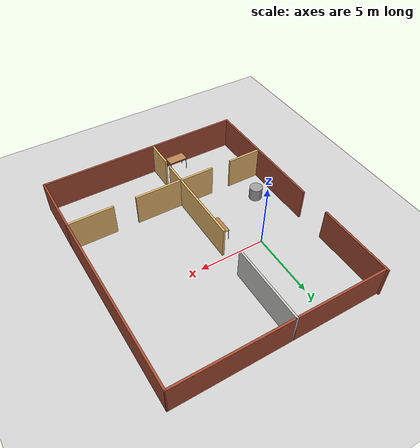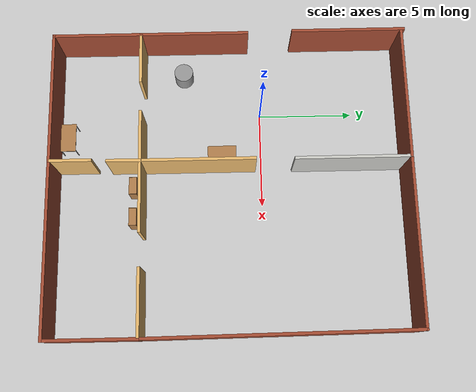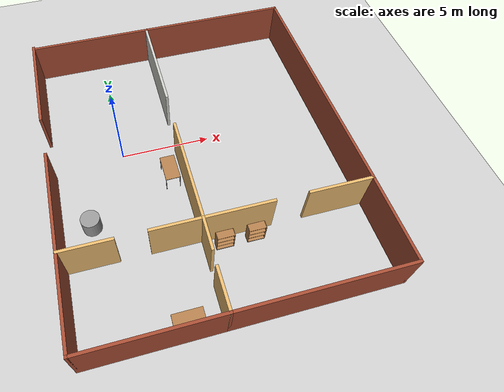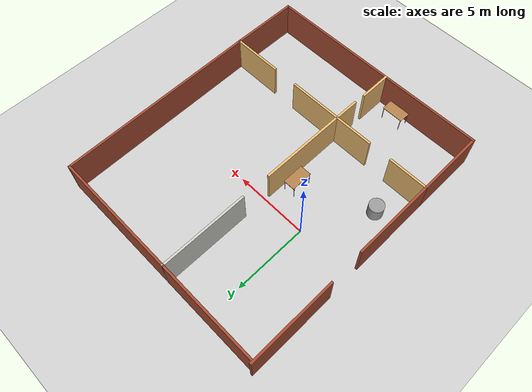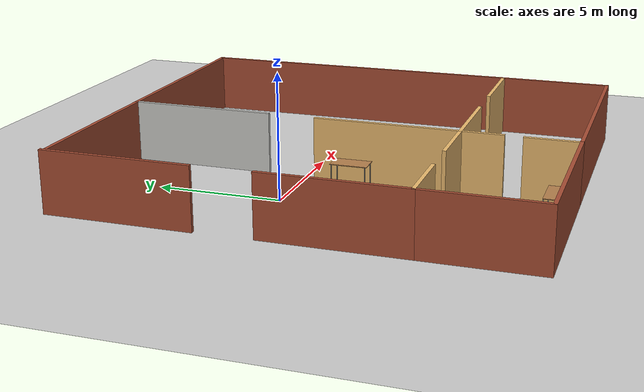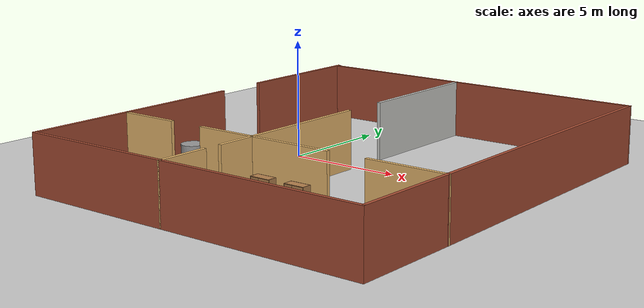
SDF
<sdf version="1.7">
 <world name="default">
  <light name="sun" type="directional">
   <pose>0 0 10 0 -0 0</pose>
   <diffuse>0.8 0.8 0.8 1</diffuse>
   <specular>0.2 0.2 0.2 1</specular>
   <attenuation>
    <range>1000</range>
    <constant>0.9</constant>
    <linear>0.01</linear>
    <quadratic>0.001</quadratic>
   </attenuation>
   <direction>-0.5 0.1 -0.9</direction>
   <spot><inner_angle>0</inner_angle><outer_angle>0</outer_angle><falloff>0</falloff></spot>
  </light>
  <model name="ground_plane">
   <static>1</static>
   <link name="link">
    <collision name="collision">
     <geometry><plane><normal>0 0 1</normal><size>100 100</size></plane></geometry>
     <surface><friction><ode><mu>100</mu><mu2>50</mu2></ode></friction></surface>
    </collision>
    <visual name="visual">
     <cast_shadows>0</cast_shadows>
     <geometry><plane><normal>0 0 1</normal><size>100 100</size></plane></geometry>
     <material>
      <script><uri>file://media/materials/scripts/gazebo.material</uri><name>Gazebo/Grey</name></script>
     </material>
    </visual>
   </link>
  </model>
  <gravity>0 0 -9.8</gravity>
  <magnetic_field>6e-06 2.3e-05 -4.2e-05</magnetic_field>
  <atmosphere type="adiabatic"/>
  <physics type="ode">
   <max_step_size>0.001</max_step_size>
   <real_time_factor>1</real_time_factor>
   <real_time_update_rate>1000</real_time_update_rate>
  </physics>
  <scene><ambient>0.4 0.4 0.4 1</ambient><background>0.7 0.7 0.7 1</background><shadows>1</shadows></scene>
  <spherical_coordinates>
   <surface_model>EARTH_WGS84</surface_model>
   <latitude_deg>0</latitude_deg>
   <longitude_deg>0</longitude_deg>
   <elevation>0</elevation>
   <heading_deg>0</heading_deg>
  </spherical_coordinates>
  <model name="building_template_model">
   <pose>3.94274 -1.58814 0 0 -0 0</pose>
   <link name="Wall_11">
    <collision name="Wall_11_Collision">
     <geometry><box><size>5.75 0.15 2.5</size></box></geometry>
     <pose>0 0 1.25 0 -0 0</pose>
    </collision>
    <visual name="Wall_11_Visual">
     <pose>0 0 1.25 0 -0 0</pose>
     <geometry><box><size>5.75 0.15 2.5</size></box></geometry>
     <material>
      <script><uri>file://media/materials/scripts/gazebo.material</uri><name>Gazebo/Bricks</name></script>
      <ambient>1 1 1 1</ambient>
     </material>
     <meta><layer>0</layer></meta>
    </visual>
    <pose>-7.81967 -1.85556 0 0 -0 -1.5708</pose>
   </link>
   <link name="Wall_12">
    <collision name="Wall_12_Collision">
     <geometry><box><size>2.75 0.15 2.5</size></box></geometry>
     <pose>0 0 1.25 0 -0 0</pose>
    </collision>
    <visual name="Wall_12_Visual">
     <pose>0 0 1.25 0 -0 0</pose>
     <geometry><box><size>2.75 0.15 2.5</size></box></geometry>
     <material>
      <script><uri>file://media/materials/scripts/gazebo.material</uri><name>Gazebo/Grey</name></script>
      <ambient>0.913725 0.72549 0.431373 1</ambient>
     </material>
     <meta><layer>0</layer></meta>
    </visual>
    <pose>-6.51967 -4.65556 0 0 -0 0</pose>
   </link>
   <link name="Wall_14">
    <collision name="Wall_14_Collision">
     <geometry><box><size>2.75 0.15 2.5</size></box></geometry>
     <pose>0 0 1.25 0 -0 0</pose>
    </collision>
    <visual name="Wall_14_Visual">
     <pose>0 0 1.25 0 -0 0</pose>
     <geometry><box><size>2.75 0.15 2.5</size></box></geometry>
     <material>
      <script><uri>file://media/materials/scripts/gazebo.material</uri><name>Gazebo/Grey</name></script>
      <ambient>0.913725 0.72549 0.431373 1</ambient>
     </material>
     <meta><layer>0</layer></meta>
    </visual>
    <pose>-2.21272 -4.65459 0 0 -0 0</pose>
   </link>
   <link name="Wall_15">
    <collision name="Wall_15_Collision">
     <geometry><box><size>6 0.15 2.5</size></box></geometry>
     <pose>0 0 1.25 0 -0 0</pose>
    </collision>
    <visual name="Wall_15_Visual">
     <pose>0 0 1.25 0 -0 0</pose>
     <geometry><box><size>6 0.15 2.5</size></box></geometry>
     <material>
      <script><uri>file://media/materials/scripts/gazebo.material</uri><name>Gazebo/Grey</name></script>
      <ambient>0.913725 0.72549 0.431373 1</ambient>
     </material>
     <meta><layer>0</layer></meta>
    </visual>
    <pose>-0.912718 -1.72959 0 0 -0 1.5708</pose>
   </link>
   <link name="Wall_17">
    <collision name="Wall_17_Collision">
     <geometry><box><size>4.75 0.15 2.5</size></box></geometry>
     <pose>0 0 1.25 0 -0 0</pose>
    </collision>
    <visual name="Wall_17_Visual">
     <pose>0 0 1.25 0 -0 0</pose>
     <geometry><box><size>4.75 0.15 2.5</size></box></geometry>
     <material>
      <script><uri>file://media/materials/scripts/gazebo.material</uri><name>Gazebo/Bricks</name></script>
      <ambient>1 1 1 1</ambient>
     </material>
     <meta><layer>0</layer></meta>
    </visual>
    <pose>-7.81967 -6.95556 0 0 -0 -1.5708</pose>
   </link>
   <link name="Wall_22">
    <collision name="Wall_22_Collision">
     <geometry><box><size>7 0.15 2.5</size></box></geometry>
     <pose>0 0 1.25 0 -0 0</pose>
    </collision>
    <visual name="Wall_22_Visual">
     <pose>0 0 1.25 0 -0 0</pose>
     <geometry><box><size>7 0.15 2.5</size></box></geometry>
     <material>
      <script><uri>file://media/materials/scripts/gazebo.material</uri><name>Gazebo/Bricks</name></script>
      <ambient>1 1 1 1</ambient>
     </material>
     <meta><layer>0</layer></meta>
    </visual>
    <pose>-4.39467 -9.25556 0 0 -0 0</pose>
   </link>
   <link name="Wall_23">
    <collision name="Wall_23_Collision">
     <geometry><box><size>2.25 0.15 2.5</size></box></geometry>
     <pose>0 0 1.25 0 -0 0</pose>
    </collision>
    <visual name="Wall_23_Visual">
     <pose>0 0 1.25 0 -0 0</pose>
     <geometry><box><size>2.25 0.15 2.5</size></box></geometry>
     <material>
      <script><uri>file://media/materials/scripts/gazebo.material</uri><name>Gazebo/Grey</name></script>
      <ambient>0.913725 0.72549 0.431373 1</ambient>
     </material>
     <meta><layer>0</layer></meta>
    </visual>
    <pose>-0.969669 -8.20556 0 0 -0 1.5708</pose>
   </link>
   <link name="Wall_25">
    <collision name="Wall_25_Collision">
     <geometry><box><size>1.79194 0.15 2.5</size></box></geometry>
     <pose>0 0 1.25 0 -0 0</pose>
    </collision>
    <visual name="Wall_25_Visual">
     <pose>0 0 1.25 0 -0 0</pose>
     <geometry><box><size>1.79194 0.15 2.5</size></box></geometry>
     <material>
      <script><uri>file://media/materials/scripts/gazebo.material</uri><name>Gazebo/Grey</name></script>
      <ambient>0.913725 0.72549 0.431373 1</ambient>
     </material>
     <meta><layer>0</layer></meta>
    </visual>
    <pose>-0.919497 -5.47553 0 0 -0 1.56254</pose>
   </link>
   <link name="Wall_27">
    <collision name="Wall_27_Collision">
     <geometry><box><size>6 0.15 2.5</size></box></geometry>
     <pose>0 0 1.25 0 -0 0</pose>
    </collision>
    <visual name="Wall_27_Visual">
     <pose>0 0 1.25 0 -0 0</pose>
     <geometry><box><size>6 0.15 2.5</size></box></geometry>
     <material>
      <script><uri>file://media/materials/scripts/gazebo.material</uri><name>Gazebo/CeilingTiled</name></script>
      <ambient>0.913725 0.72549 0.431373 1</ambient>
     </material>
     <meta><layer>0</layer></meta>
    </visual>
    <pose>-0.880014 6.2046 0 0 -0 1.5708</pose>
   </link>
   <link name="Wall_28">
    <collision name="Wall_28_Collision">
     <geometry><box><size>7 0.15 2.5</size></box></geometry>
     <pose>0 0 1.25 0 -0 0</pose>
    </collision>
    <visual name="Wall_28_Visual">
     <pose>0 0 1.25 0 -0 0</pose>
     <geometry><box><size>7 0.15 2.5</size></box></geometry>
     <material>
      <script><uri>file://media/materials/scripts/gazebo.material</uri><name>Gazebo/Bricks</name></script>
      <ambient>1 1 1 1</ambient>
     </material>
     <meta><layer>0</layer></meta>
    </visual>
    <pose>-4.30501 9.1296 0 0 -0 3.14159</pose>
   </link>
   <link name="Wall_30">
    <collision name="Wall_30_Collision">
     <geometry><box><size>8.75 0.15 2.5</size></box></geometry>
     <pose>0 0 1.25 0 -0 0</pose>
    </collision>
    <visual name="Wall_30_Visual">
     <pose>0 0 1.25 0 -0 0</pose>
     <geometry><box><size>8.75 0.15 2.5</size></box></geometry>
     <material>
      <script><uri>file://media/materials/scripts/gazebo.material</uri><name>Gazebo/Bricks</name></script>
      <ambient>1 1 1 1</ambient>
     </material>
     <meta><layer>0</layer></meta>
    </visual>
    <pose>3.41999 9.1296 0 0 -0 0</pose>
   </link>
   <link name="Wall_36">
    <collision name="Wall_36_Collision">
     <geometry><box><size>9 0.15 2.5</size></box></geometry>
     <pose>0 0 1.25 0 -0 0</pose>
    </collision>
    <visual name="Wall_36_Visual">
     <pose>0 0 1.25 0 -0 0</pose>
     <geometry><box><size>9 0.15 2.5</size></box></geometry>
     <material>
      <script><uri>file://media/materials/scripts/gazebo.material</uri><name>Gazebo/Bricks</name></script>
      <ambient>1 1 1 1</ambient>
     </material>
     <meta><layer>0</layer></meta>
    </visual>
    <pose>3.45533 -9.25556 0 0 -0 0</pose>
   </link>
   <link name="Wall_37">
    <collision name="Wall_37_Collision">
     <geometry><box><size>4.75 0.15 2.5</size></box></geometry>
     <pose>0 0 1.25 0 -0 0</pose>
    </collision>
    <visual name="Wall_37_Visual">
     <pose>0 0 1.25 0 -0 0</pose>
     <geometry><box><size>4.75 0.15 2.5</size></box></geometry>
     <material>
      <script><uri>file://media/materials/scripts/gazebo.material</uri><name>Gazebo/Bricks</name></script>
      <ambient>1 1 1 1</ambient>
     </material>
     <meta><layer>0</layer></meta>
    </visual>
    <pose>7.88033 -6.95556 0 0 -0 1.5708</pose>
   </link>
   <link name="Wall_39">
    <collision name="Wall_39_Collision">
     <geometry><box><size>3.5 0.15 2.5</size></box></geometry>
     <pose>0 0 1.25 0 -0 0</pose>
    </collision>
    <visual name="Wall_39_Visual">
     <pose>0 0 1.25 0 -0 0</pose>
     <geometry><box><size>3.5 0.15 2.5</size></box></geometry>
     <material>
      <script><uri>file://media/materials/scripts/gazebo.material</uri><name>Gazebo/Grey</name></script>
      <ambient>0.913725 0.72549 0.431373 1</ambient>
     </material>
     <meta><layer>0</layer></meta>
    </visual>
    <pose>6.20533 -4.65556 0 0 -0 3.14159</pose>
   </link>
   <link name="Wall_41">
    <collision name="Wall_41_Collision">
     <geometry><box><size>3.75 0.15 2.5</size></box></geometry>
     <pose>0 0 1.25 0 -0 0</pose>
    </collision>
    <visual name="Wall_41_Visual">
     <pose>0 0 1.25 0 -0 0</pose>
     <geometry><box><size>3.75 0.15 2.5</size></box></geometry>
     <material>
      <script><uri>file://media/materials/scripts/gazebo.material</uri><name>Gazebo/Grey</name></script>
      <ambient>0.913725 0.72549 0.431373 1</ambient>
     </material>
     <meta><layer>0</layer></meta>
    </visual>
    <pose>0.887282 -4.65459 0 0 -0 0</pose>
   </link>
   <link name="Wall_43">
    <collision name="Wall_43_Collision">
     <geometry><box><size>13.9361 0.15 2.5</size></box></geometry>
     <pose>0 0 1.25 0 -0 0</pose>
    </collision>
    <visual name="Wall_43_Visual">
     <pose>0 0 1.25 0 -0 0</pose>
     <geometry><box><size>13.9361 0.15 2.5</size></box></geometry>
     <material>
      <script><uri>file://media/materials/scripts/gazebo.material</uri><name>Gazebo/Bricks</name></script>
      <ambient>1 1 1 1</ambient>
     </material>
     <meta><layer>0</layer></meta>
    </visual>
    <pose>7.80016 2.23702 0 0 -0 1.58243</pose>
   </link>
   <link name="Wall_6">
    <collision name="Wall_6_Collision">
     <geometry><box><size>6 0.15 2.5</size></box></geometry>
     <pose>0 0 1.25 0 -0 0</pose>
    </collision>
    <visual name="Wall_6_Visual">
     <pose>0 0 1.25 0 -0 0</pose>
     <geometry><box><size>6 0.15 2.5</size></box></geometry>
     <material>
      <script><uri>file://media/materials/scripts/gazebo.material</uri><name>Gazebo/Bricks</name></script>
      <ambient>1 1 1 1</ambient>
     </material>
     <meta><layer>0</layer></meta>
    </visual>
    <pose>-7.8812 6.33056 0 0 -0 1.5708</pose>
   </link>
   <static>1</static>
  </model>
  <model name="Table">
   <static>1</static>
   <link name="link">
    <collision name="surface">
     <pose>0 0 1 0 -0 0</pose>
     <geometry><box><size>1.5 0.8 0.03</size></box></geometry>
     <surface><friction><ode><mu>0.6</mu><mu2>0.6</mu2></ode></friction></surface>
    </collision>
    <visual name="visual1">
     <pose>0 0 1 0 -0 0</pose>
     <geometry><box><size>1.5 0.8 0.03</size></box></geometry>
     <material>
      <diffuse>1 1 1 1</diffuse>
      <script><uri>file://media/materials/scripts/gazebo.material</uri><name>Gazebo/Wood</name></script>
      <pbr><metal><albedo_map>model://Table/Table_Diffuse.jpg</albedo_map></metal></pbr>
     </material>
    </visual>
    <collision name="front_left_leg">
     <pose>0.68 0.38 0.5 0 -0 0</pose>
     <geometry><cylinder><radius>0.02</radius><length>1</length></cylinder></geometry>
    </collision>
    <visual name="front_left_leg">
     <pose>0.68 0.38 0.5 0 -0 0</pose>
     <geometry><cylinder><radius>0.02</radius><length>1</length></cylinder></geometry>
     <material>
      <diffuse>0.5 0.5 0.5 1</diffuse>
      <script><uri>file://media/materials/scripts/gazebo.material</uri><name>Gazebo/Grey</name></script>
     </material>
    </visual>
    <collision name="front_right_leg">
     <pose>0.68 -0.38 0.5 0 -0 0</pose>
     <geometry><cylinder><radius>0.02</radius><length>1</length></cylinder></geometry>
    </collision>
    <visual name="front_right_leg">
     <pose>0.68 -0.38 0.5 0 -0 0</pose>
     <geometry><cylinder><radius>0.02</radius><length>1</length></cylinder></geometry>
     <material>
      <diffuse>0.5 0.5 0.5 1</diffuse>
      <script><uri>file://media/materials/scripts/gazebo.material</uri><name>Gazebo/Grey</name></script>
     </material>
    </visual>
    <collision name="back_right_leg">
     <pose>-0.68 -0.38 0.5 0 -0 0</pose>
     <geometry><cylinder><radius>0.02</radius><length>1</length></cylinder></geometry>
    </collision>
    <visual name="back_right_leg">
     <pose>-0.68 -0.38 0.5 0 -0 0</pose>
     <geometry><cylinder><radius>0.02</radius><length>1</length></cylinder></geometry>
     <material>
      <diffuse>0.5 0.5 0.5 1</diffuse>
      <script><uri>file://media/materials/scripts/gazebo.material</uri><name>Gazebo/Grey</name></script>
     </material>
    </visual>
    <collision name="back_left_leg">
     <pose>-0.68 0.38 0.5 0 -0 0</pose>
     <geometry><cylinder><radius>0.02</radius><length>1</length></cylinder></geometry>
    </collision>
    <visual name="back_left_leg">
     <pose>-0.68 0.38 0.5 0 -0 0</pose>
     <geometry><cylinder><radius>0.02</radius><length>1</length></cylinder></geometry>
     <material>
      <diffuse>0.5 0.5 0.5 1</diffuse>
      <script><uri>file://media/materials/scripts/gazebo.material</uri><name>Gazebo/Grey</name></script>
     </material>
    </visual>
   </link>
   <pose>1.29696 -10.224 0 0 -0 0</pose>
  </model>
  <model name="Table_0">
   <static>1</static>
   <link name="link">
    <collision name="surface">
     <pose>0 0 1 0 -0 0</pose>
     <geometry><box><size>1.5 0.8 0.03</size></box></geometry>
     <surface><friction><ode><mu>0.6</mu><mu2>0.6</mu2></ode></friction></surface>
    </collision>
    <visual name="visual1">
     <pose>0 0 1 0 -0 0</pose>
     <geometry><box><size>1.5 0.8 0.03</size></box></geometry>
     <material>
      <diffuse>1 1 1 1</diffuse>
      <script><uri>file://media/materials/scripts/gazebo.material</uri><name>Gazebo/Wood</name></script>
      <pbr><metal><albedo_map>model://Table/Table_Diffuse.jpg</albedo_map></metal></pbr>
     </material>
    </visual>
    <collision name="front_left_leg">
     <pose>0.68 0.38 0.5 0 -0 0</pose>
     <geometry><cylinder><radius>0.02</radius><length>1</length></cylinder></geometry>
    </collision>
    <visual name="front_left_leg">
     <pose>0.68 0.38 0.5 0 -0 0</pose>
     <geometry><cylinder><radius>0.02</radius><length>1</length></cylinder></geometry>
     <material>
      <diffuse>0.5 0.5 0.5 1</diffuse>
      <script><uri>file://media/materials/scripts/gazebo.material</uri><name>Gazebo/Grey</name></script>
     </material>
    </visual>
    <collision name="front_right_leg">
     <pose>0.68 -0.38 0.5 0 -0 0</pose>
     <geometry><cylinder><radius>0.02</radius><length>1</length></cylinder></geometry>
    </collision>
    <visual name="front_right_leg">
     <pose>0.68 -0.38 0.5 0 -0 0</pose>
     <geometry><cylinder><radius>0.02</radius><length>1</length></cylinder></geometry>
     <material>
      <diffuse>0.5 0.5 0.5 1</diffuse>
      <script><uri>file://media/materials/scripts/gazebo.material</uri><name>Gazebo/Grey</name></script>
     </material>
    </visual>
    <collision name="back_right_leg">
     <pose>-0.68 -0.38 0.5 0 -0 0</pose>
     <geometry><cylinder><radius>0.02</radius><length>1</length></cylinder></geometry>
    </collision>
    <visual name="back_right_leg">
     <pose>-0.68 -0.38 0.5 0 -0 0</pose>
     <geometry><cylinder><radius>0.02</radius><length>1</length></cylinder></geometry>
     <material>
      <diffuse>0.5 0.5 0.5 1</diffuse>
      <script><uri>file://media/materials/scripts/gazebo.material</uri><name>Gazebo/Grey</name></script>
     </material>
    </visual>
    <collision name="back_left_leg">
     <pose>-0.68 0.38 0.5 0 -0 0</pose>
     <geometry><cylinder><radius>0.02</radius><length>1</length></cylinder></geometry>
    </collision>
    <visual name="back_left_leg">
     <pose>-0.68 0.38 0.5 0 -0 0</pose>
     <geometry><cylinder><radius>0.02</radius><length>1</length></cylinder></geometry>
     <material>
      <diffuse>0.5 0.5 0.5 1</diffuse>
      <script><uri>file://media/materials/scripts/gazebo.material</uri><name>Gazebo/Grey</name></script>
     </material>
    </visual>
   </link>
   <pose>2.31437 -2.08075 0 0 -0 1.58683</pose>
  </model>
  <model name="bookshelf">
   <static>1</static>
   <link name="link">
    <inertial><mass>1</mass></inertial>
    <collision name="back">
     <pose>0 0.005 0.6 0 -0 0</pose>
     <geometry><box><size>0.9 0.01 1.2</size></box></geometry>
    </collision>
    <visual name="visual1">
     <pose>0 0.005 0.6 0 -0 0</pose>
     <geometry><box><size>0.9 0.01 1.2</size></box></geometry>
     <material>
      <script><uri>file://media/materials/scripts/gazebo.material</uri><name>Gazebo/Wood</name></script>
     </material>
    </visual>
    <collision name="left_side">
     <pose>0.45 -0.195 0.6 0 -0 0</pose>
     <geometry><box><size>0.02 0.4 1.2</size></box></geometry>
    </collision>
    <visual name="visual2">
     <pose>0.45 -0.195 0.6 0 -0 0</pose>
     <geometry><box><size>0.02 0.4 1.2</size></box></geometry>
     <material>
      <script><uri>file://media/materials/scripts/gazebo.material</uri><name>Gazebo/Wood</name></script>
     </material>
    </visual>
    <collision name="right_side">
     <pose>-0.45 -0.195 0.6 0 -0 0</pose>
     <geometry><box><size>0.02 0.4 1.2</size></box></geometry>
    </collision>
    <visual name="visual3">
     <pose>-0.45 -0.195 0.6 0 -0 0</pose>
     <geometry><box><size>0.02 0.4 1.2</size></box></geometry>
     <material>
      <script><uri>file://media/materials/scripts/gazebo.material</uri><name>Gazebo/Wood</name></script>
     </material>
    </visual>
    <collision name="bottom">
     <pose>0 -0.195 0.03 0 -0 0</pose>
     <geometry><box><size>0.88 0.4 0.06</size></box></geometry>
    </collision>
    <visual name="visual4">
     <pose>0 -0.195 0.03 0 -0 0</pose>
     <geometry><box><size>0.88 0.4 0.06</size></box></geometry>
     <material>
      <script><uri>file://media/materials/scripts/gazebo.material</uri><name>Gazebo/Wood</name></script>
     </material>
    </visual>
    <collision name="top">
     <pose>0 -0.195 1.19 0 -0 0</pose>
     <geometry><box><size>0.88 0.4 0.02</size></box></geometry>
    </collision>
    <visual name="visual5">
     <pose>0 -0.195 1.19 0 -0 0</pose>
     <geometry><box><size>0.88 0.4 0.02</size></box></geometry>
     <material>
      <script><uri>file://media/materials/scripts/gazebo.material</uri><name>Gazebo/Wood</name></script>
     </material>
    </visual>
    <collision name="low_shelf">
     <pose>0 -0.195 0.43 0 -0 0</pose>
     <geometry><box><size>0.88 0.4 0.02</size></box></geometry>
    </collision>
    <visual name="visual6">
     <pose>0 -0.195 0.43 0 -0 0</pose>
     <geometry><box><size>0.88 0.4 0.02</size></box></geometry>
     <material>
      <script><uri>file://media/materials/scripts/gazebo.material</uri><name>Gazebo/Wood</name></script>
     </material>
    </visual>
    <collision name="high_shelf">
     <pose>0 -0.195 0.8 0 -0 0</pose>
     <geometry><box><size>0.88 0.4 0.02</size></box></geometry>
    </collision>
    <visual name="visual7">
     <pose>0 -0.195 0.8 0 -0 0</pose>
     <geometry><box><size>0.88 0.4 0.02</size></box></geometry>
     <material>
      <script><uri>file://media/materials/scripts/gazebo.material</uri><name>Gazebo/Wood</name></script>
     </material>
    </visual>
   </link>
   <pose>4.02857 -6.55195 0 0 -0 0</pose>
  </model>
  <model name="bookshelf_0">
   <static>1</static>
   <link name="link">
    <inertial><mass>1</mass></inertial>
    <collision name="back">
     <pose>0 0.005 0.6 0 -0 0</pose>
     <geometry><box><size>0.9 0.01 1.2</size></box></geometry>
    </collision>
    <visual name="visual1">
     <pose>0 0.005 0.6 0 -0 0</pose>
     <geometry><box><size>0.9 0.01 1.2</size></box></geometry>
     <material>
      <script><uri>file://media/materials/scripts/gazebo.material</uri><name>Gazebo/Wood</name></script>
     </material>
    </visual>
    <collision name="left_side">
     <pose>0.45 -0.195 0.6 0 -0 0</pose>
     <geometry><box><size>0.02 0.4 1.2</size></box></geometry>
    </collision>
    <visual name="visual2">
     <pose>0.45 -0.195 0.6 0 -0 0</pose>
     <geometry><box><size>0.02 0.4 1.2</size></box></geometry>
     <material>
      <script><uri>file://media/materials/scripts/gazebo.material</uri><name>Gazebo/Wood</name></script>
     </material>
    </visual>
    <collision name="right_side">
     <pose>-0.45 -0.195 0.6 0 -0 0</pose>
     <geometry><box><size>0.02 0.4 1.2</size></box></geometry>
    </collision>
    <visual name="visual3">
     <pose>-0.45 -0.195 0.6 0 -0 0</pose>
     <geometry><box><size>0.02 0.4 1.2</size></box></geometry>
     <material>
      <script><uri>file://media/materials/scripts/gazebo.material</uri><name>Gazebo/Wood</name></script>
     </material>
    </visual>
    <collision name="bottom">
     <pose>0 -0.195 0.03 0 -0 0</pose>
     <geometry><box><size>0.88 0.4 0.06</size></box></geometry>
    </collision>
    <visual name="visual4">
     <pose>0 -0.195 0.03 0 -0 0</pose>
     <geometry><box><size>0.88 0.4 0.06</size></box></geometry>
     <material>
      <script><uri>file://media/materials/scripts/gazebo.material</uri><name>Gazebo/Wood</name></script>
     </material>
    </visual>
    <collision name="top">
     <pose>0 -0.195 1.19 0 -0 0</pose>
     <geometry><box><size>0.88 0.4 0.02</size></box></geometry>
    </collision>
    <visual name="visual5">
     <pose>0 -0.195 1.19 0 -0 0</pose>
     <geometry><box><size>0.88 0.4 0.02</size></box></geometry>
     <material>
      <script><uri>file://media/materials/scripts/gazebo.material</uri><name>Gazebo/Wood</name></script>
     </material>
    </visual>
    <collision name="low_shelf">
     <pose>0 -0.195 0.43 0 -0 0</pose>
     <geometry><box><size>0.88 0.4 0.02</size></box></geometry>
    </collision>
    <visual name="visual6">
     <pose>0 -0.195 0.43 0 -0 0</pose>
     <geometry><box><size>0.88 0.4 0.02</size></box></geometry>
     <material>
      <script><uri>file://media/materials/scripts/gazebo.material</uri><name>Gazebo/Wood</name></script>
     </material>
    </visual>
    <collision name="high_shelf">
     <pose>0 -0.195 0.8 0 -0 0</pose>
     <geometry><box><size>0.88 0.4 0.02</size></box></geometry>
    </collision>
    <visual name="visual7">
     <pose>0 -0.195 0.8 0 -0 0</pose>
     <geometry><box><size>0.88 0.4 0.02</size></box></geometry>
     <material>
      <script><uri>file://media/materials/scripts/gazebo.material</uri><name>Gazebo/Wood</name></script>
     </material>
    </visual>
   </link>
   <pose>5.66478 -6.54594 0 0 -0 0</pose>
  </model>
  <model name="unit_cylinder">
   <pose>-2.29915 -4.08741 0.499997 3e-06 4e-06 -0</pose>
   <link name="link">
    <inertial>
     <mass>1</mass>
     <inertia><ixx>0.145833</ixx><ixy>0</ixy><ixz>0</ixz><iyy>0.145833</iyy><iyz>0</iyz><izz>0.125</izz></inertia>
    </inertial>
    <collision name="collision">
     <geometry><cylinder><radius>0.5</radius><length>1</length></cylinder></geometry>
    </collision>
    <visual name="visual">
     <geometry><cylinder><radius>0.5</radius><length>1</length></cylinder></geometry>
     <material>
      <script><name>Gazebo/Grey</name><uri>file://media/materials/scripts/gazebo.material</uri></script>
     </material>
    </visual>
   </link>
  </model>
 </world>
</sdf>
